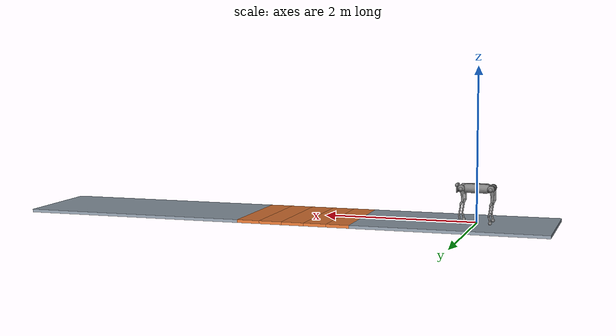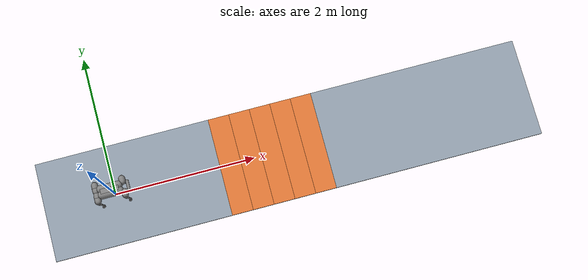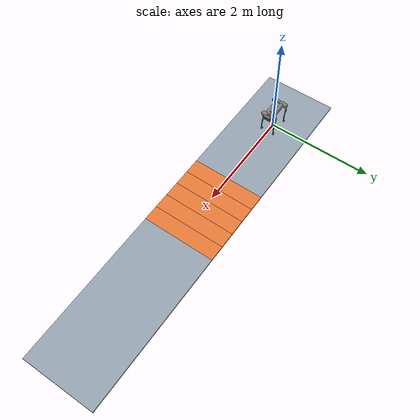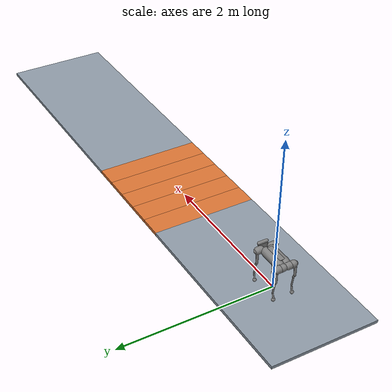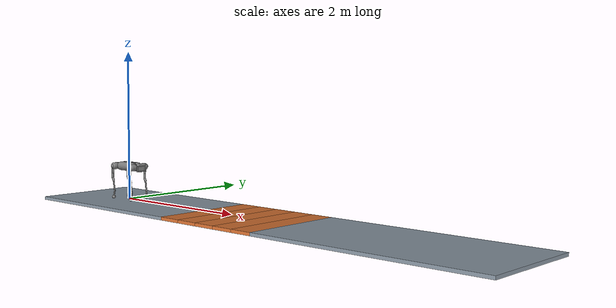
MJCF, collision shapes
<mujoco model="go1 clean transition scene">
  <include file="go1.xml"/>
  <statistic center="0 0 0.1" extent="0.8"/>

  <visual>
    <headlight diffuse="0.6 0.6 0.6" ambient="0.3 0.3 0.3" specular="0 0 0"/>
    <rgba haze="0.15 0.25 0.35 1"/>
    <global azimuth="120" elevation="-20"/>
  </visual>

  <asset>
    <texture type="skybox" builtin="gradient" rgb1="0.3 0.5 0.7" rgb2="0 0 0" width="512" height="3072"/>
    <material name="rigidtile" rgba="0.55 0.6 0.65 1"/>
    <material name="softtile"  rgba="0.85 0.45 0.2 1"/>
  </asset>

  <default>
    <default class="tile">
      <joint type="slide" axis="0 0 1" range="-0.15 0.002"/>
      <geom type="box" size="0.15 0.7 0.02" pos="0 0 -0.02" contype="1" conaffinity="2"
            priority="3" condim="6" friction="0.8 0.02 0.01"/>
    </default>
  </default>

  <worldbody>
    <light pos="0 0 1.5" dir="0 0 -1" directional="true"/>

    <!-- rigid approach: one big stiff tile, x in [-1.0, 1.5] -->
    <body name="tile_rigid_approach" pos="0.25 0 0">
      <joint name="rig_app_j" class="tile" stiffness="1000000" damping="1550"/>
      <geom class="tile" size="1.25 0.7 0.02" material="rigidtile"/>
    </body>

    <!-- soft zone: 5 tiles, x in [1.5, 3.0], 0.3 m each. stiffness/damping set per episode by env. -->
    <body name="tile_soft_0" pos="1.65 0 0"><joint name="soft0_j" class="tile" stiffness="1500" damping="60"/><geom class="tile" material="softtile"/></body>
    <body name="tile_soft_1" pos="1.95 0 0"><joint name="soft1_j" class="tile" stiffness="1500" damping="60"/><geom class="tile" material="softtile"/></body>
    <body name="tile_soft_2" pos="2.25 0 0"><joint name="soft2_j" class="tile" stiffness="1500" damping="60"/><geom class="tile" material="softtile"/></body>
    <body name="tile_soft_3" pos="2.55 0 0"><joint name="soft3_j" class="tile" stiffness="1500" damping="60"/><geom class="tile" material="softtile"/></body>
    <body name="tile_soft_4" pos="2.85 0 0"><joint name="soft4_j" class="tile" stiffness="1500" damping="60"/><geom class="tile" material="softtile"/></body>

    <!-- rigid exit: one big stiff tile, x in [3.0, 6.0] -->
    <body name="tile_rigid_exit" pos="4.5 0 0">
      <joint name="rig_exit_j" class="tile" stiffness="1000000" damping="1550"/>
      <geom class="tile" size="1.5 0.7 0.02" material="rigidtile"/>
    </body>
  </worldbody>
</mujoco>

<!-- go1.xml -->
<mujoco model="go1">
  <compiler angle="radian" meshdir="assets" autolimits="true"/>

  <default>
    <default class="go1">
      <geom friction="0.6" margin="0.001" condim="3"/>
      <joint axis="0 1 0" damping="2" armature="0.01"/>
      <position kp="100" forcerange="-23.7 23.7"/>
      <default class="abduction">
        <joint axis="1 0 0" damping="1" range="-0.863 0.863"/>
        <position ctrlrange="-0.863 0.863"/>
      </default>
      <default class="hip">
        <joint range="-0.686 4.501"/>
        <position ctrlrange="-0.686 4.501"/>
      </default>
      <default class="knee">
        <joint range="-2.818 -0.888"/>
        <position forcerange="-35.55 35.55" ctrlrange="-2.818 -0.888"/>
      </default>
      <default class="visual">
        <geom type="mesh" contype="0" conaffinity="0" group="2" material="dark"/>
      </default>
      <default class="collision">
        <geom group="3" type="capsule"/>
        <default class="hip_left1">
          <geom size="0.046 0.02" pos="0 0.045 0" quat="1 1 0 0" type="capsule"/>
        </default>
        <default class="hip_left2">
          <geom size="0.031 0.02" pos="0 0.065 0" quat="1 1 0 0" type="capsule"/>
        </default>
        <default class="hip_left3">
          <geom size="0.046 0.02" quat="1 1 0 0" type="capsule"/>
        </default>
        <default class="hip_right1">
          <geom size="0.046 0.02" pos="0 -0.045 0" quat="1 1 0 0" type="capsule"/>
        </default>
        <default class="hip_right2">
          <geom size="0.031 0.02" pos="0 -0.065 0" quat="1 1 0 0" type="capsule"/>
        </default>
        <default class="hip_right3">
          <geom size="0.046 0.02" quat="1 1 0 0" type="capsule"/>
        </default>
        <default class="thigh1">
          <geom size="0.015" fromto="-0.02 0 0 -0.02 0 -0.16"/>
        </default>
        <default class="thigh2">
          <geom size="0.015" fromto="0 0 0 -0.02 0 -0.1"/>
        </default>
        <default class="thigh3">
          <geom size="0.015" fromto="-0.02 0 -0.16 0 0 -0.2"/>
        </default>
        <default class="calf1">
          <geom size="0.01" fromto="0 0 0 0.02 0 -0.13"/>
        </default>
        <default class="calf2">
          <geom size="0.01" fromto="0.02 0 -0.13 0 0 -0.2"/>
        </default>
        <default class="foot">
          <geom type="sphere" size="0.023" pos="0 0 -0.213" solimp="0.015 1 0.031" condim="3"
            friction="0.8 0.02 0.01"/>
        </default>
      </default>
    </default>
  </default>

  <asset>
    <material name="dark" rgba="0.1 0.1 0.1 1"/>
    <mesh class="go1" file="trunk.stl"/>
    <mesh class="go1" file="hip.stl"/>
    <mesh class="go1" file="thigh_mirror.stl"/>
    <mesh class="go1" file="calf.stl"/>
    <mesh class="go1" file="thigh.stl"/>
  </asset>

  <worldbody>
    <light name="spotlight" mode="targetbodycom" target="trunk" pos="0 -1 2"/>
    <body name="trunk" pos="0 0 0.445" childclass="go1">
      <camera name="tracking" mode="trackcom" pos="0 -1 0.8" xyaxes="1 0 0 0 1 1"/>
      <site name="head" pos="0.3 0 0" rgba="1 0 0 1" size="0.02" group="5"/>
      <inertial pos="0.0223 0.002 -0.0005" quat="-0.00342088 0.705204 0.000106698 0.708996" mass="5.204"
        diaginertia="0.0716565 0.0630105 0.0168101"/>
      <freejoint/>
      <geom class="visual" mesh="trunk"/>
      <geom class="collision" size="0.125 0.04 0.057" type="box"/>
      <geom class="collision" quat="1 0 1 0" pos="0 -0.04 0" size="0.058 0.125" type="capsule"/>
      <geom class="collision" quat="1 0 1 0" pos="0 +0.04 0" size="0.058 0.125" type="capsule"/>
      <geom class="collision" pos="0.25 0 0" size="0.005 0.06 0.05" type="box"/>
      <geom class="collision" pos="0.25 0.06 -0.01" size="0.009 0.035"/>
      <geom class="collision" pos="0.25 -0.06 -0.01" size="0.009 0.035"/>
      <geom class="collision" pos="0.25 0 -0.05" size="0.01 0.06" quat="1 1 0 0"/>
      <geom class="collision" pos="0.255 0 0.0355" size="0.021 0.052" quat="1 1 0 0"/>
      <site name="imu" pos="0 0 0"/>
      <body name="FR_hip" pos="0.1881 -0.04675 0">
        <inertial pos="-0.0049166 0.00762615 -8.865e-05" quat="0.507341 0.514169 0.495027 0.482891" mass="0.68"
          diaginertia="0.000734064 0.000468438 0.000398719"/>
        <joint class="abduction" name="FR_hip_joint"/>
        <geom class="visual" mesh="hip" quat="1 0 0 0"/>
        <geom class="hip_right1"/>
        <geom class="hip_right2"/>
        <body name="FR_thigh" pos="0 -0.08 0">
          <inertial pos="-0.00304722 0.019315 -0.0305004" quat="0.65243 -0.0272313 0.0775126 0.753383" mass="1.009"
            diaginertia="0.00478717 0.00460903 0.000709268"/>
          <joint class="hip" name="FR_thigh_joint"/>
          <geom class="visual" mesh="thigh_mirror"/>
          <geom class="thigh1"/>
          <geom class="thigh2"/>
          <geom class="thigh3"/>
          <body name="FR_calf" pos="0 0 -0.213">
            <inertial pos="0.00429862 0.000976676 -0.146197" quat="0.691246 0.00357467 0.00511118 0.722592"
              mass="0.195862" diaginertia="0.00149767 0.00148468 3.58427e-05"/>
            <joint class="knee" name="FR_calf_joint"/>
            <geom class="visual" mesh="calf"/>
            <geom class="calf1"/>
            <geom class="calf2"/>
            <geom name="FR" class="foot"/>
            <site name="FR" pos="0 0 -0.213" type="sphere" size="0.023" group="5"/>
          </body>
        </body>
      </body>
      <body name="FL_hip" pos="0.1881 0.04675 0">
        <inertial pos="-0.0049166 -0.00762615 -8.865e-05" quat="0.482891 0.495027 0.514169 0.507341" mass="0.68"
          diaginertia="0.000734064 0.000468438 0.000398719"/>
        <joint class="abduction" name="FL_hip_joint"/>
        <geom class="visual" mesh="hip"/>
        <geom class="hip_left1"/>
        <geom class="hip_left2"/>
        <body name="FL_thigh" pos="0 0.08 0">
          <inertial pos="-0.00304722 -0.019315 -0.0305004" quat="0.753383 0.0775126 -0.0272313 0.65243" mass="1.009"
            diaginertia="0.00478717 0.00460903 0.000709268"/>
          <joint class="hip" name="FL_thigh_joint"/>
          <geom class="visual" mesh="thigh"/>
          <geom class="thigh1"/>
          <geom class="thigh2"/>
          <geom class="thigh3"/>
          <body name="FL_calf" pos="0 0 -0.213">
            <inertial pos="0.00429862 0.000976676 -0.146197" quat="0.691246 0.00357467 0.00511118 0.722592"
              mass="0.195862" diaginertia="0.00149767 0.00148468 3.58427e-05"/>
            <joint class="knee" name="FL_calf_joint"/>
            <geom class="visual" mesh="calf"/>
            <geom class="calf1"/>
            <geom class="calf2"/>
            <geom name="FL" class="foot"/>
            <site name="FL" pos="0 0 -0.213" type="sphere" size="0.023" group="5"/>
          </body>
        </body>
      </body>
      <body name="RR_hip" pos="-0.1881 -0.04675 0">
        <inertial pos="0.0049166 0.00762615 -8.865e-05" quat="0.495027 0.482891 0.507341 0.514169" mass="0.68"
          diaginertia="0.000734064 0.000468438 0.000398719"/>
        <joint class="abduction" name="RR_hip_joint"/>
        <geom class="visual" quat="0 0 0 -1" mesh="hip"/>
        <geom class="hip_right1"/>
        <geom class="hip_right2"/>
        <geom class="hip_right3"/>
        <body name="RR_thigh" pos="0 -0.08 0">
          <inertial pos="-0.00304722 0.019315 -0.0305004" quat="0.65243 -0.0272313 0.0775126 0.753383" mass="1.009"
            diaginertia="0.00478717 0.00460903 0.000709268"/>
          <joint class="hip" name="RR_thigh_joint"/>
          <geom class="visual" mesh="thigh_mirror"/>
          <geom class="thigh1"/>
          <geom class="thigh2"/>
          <geom class="thigh3"/>
          <body name="RR_calf" pos="0 0 -0.213">
            <inertial pos="0.00429862 0.000976676 -0.146197" quat="0.691246 0.00357467 0.00511118 0.722592"
              mass="0.195862" diaginertia="0.00149767 0.00148468 3.58427e-05"/>
            <joint class="knee" name="RR_calf_joint"/>
            <geom class="visual" mesh="calf"/>
            <geom class="calf1"/>
            <geom class="calf2"/>
            <geom name="RR" class="foot"/>
            <site name="RR" pos="0 0 -0.213" type="sphere" size="0.023" group="5"/>
          </body>
        </body>
      </body>
      <body name="RL_hip" pos="-0.1881 0.04675 0">
        <inertial pos="0.0049166 -0.00762615 -8.865e-05" quat="0.514169 0.507341 0.482891 0.495027" mass="0.68"
          diaginertia="0.000734064 0.000468438 0.000398719"/>
        <joint class="abduction" name="RL_hip_joint"/>
        <geom class="visual" quat="0 0 1 0" mesh="hip"/>
        <geom class="hip_left1"/>
        <geom class="hip_left2"/>
        <geom class="hip_left3"/>
        <body name="RL_thigh" pos="0 0.08 0">
          <inertial pos="-0.00304722 -0.019315 -0.0305004" quat="0.753383 0.0775126 -0.0272313 0.65243" mass="1.009"
            diaginertia="0.00478717 0.00460903 0.000709268"/>
          <joint class="hip" name="RL_thigh_joint"/>
          <geom class="visual" mesh="thigh"/>
          <geom class="thigh1"/>
          <geom class="thigh2"/>
          <geom class="thigh3"/>
          <body name="RL_calf" pos="0 0 -0.213">
            <inertial pos="0.00429862 0.000976676 -0.146197" quat="0.691246 0.00357467 0.00511118 0.722592"
              mass="0.195862" diaginertia="0.00149767 0.00148468 3.58427e-05"/>
            <joint class="knee" name="RL_calf_joint"/>
            <geom class="visual" mesh="calf"/>
            <geom class="calf1"/>
            <geom class="calf2"/>
            <geom name="RL" class="foot"/>
            <site name="RL" pos="0 0 -0.213" type="sphere" size="0.023" group="5"/>
          </body>
        </body>
      </body>
    </body>
  </worldbody>

  <actuator>
    <position class="abduction" name="FR_hip" joint="FR_hip_joint"/>
    <position class="hip" name="FR_thigh" joint="FR_thigh_joint"/>
    <position class="knee" name="FR_calf" joint="FR_calf_joint"/>
    <position class="abduction" name="FL_hip" joint="FL_hip_joint"/>
    <position class="hip" name="FL_thigh" joint="FL_thigh_joint"/>
    <position class="knee" name="FL_calf" joint="FL_calf_joint"/>
    <position class="abduction" name="RR_hip" joint="RR_hip_joint"/>
    <position class="hip" name="RR_thigh" joint="RR_thigh_joint"/>
    <position class="knee" name="RR_calf" joint="RR_calf_joint"/>
    <position class="abduction" name="RL_hip" joint="RL_hip_joint"/>
    <position class="hip" name="RL_thigh" joint="RL_thigh_joint"/>
    <position class="knee" name="RL_calf" joint="RL_calf_joint"/>
  </actuator>

  <keyframe>
    <key name="home" qpos="0 0 0.27 1 0 0 0 0 0.9 -1.8 0 0.9 -1.8 0 0.9 -1.8 0 0.9 -1.8"
      ctrl="0 0.9 -1.8 0 0.9 -1.8 0 0.9 -1.8 0 0.9 -1.8"/>
  </keyframe>
</mujoco>
